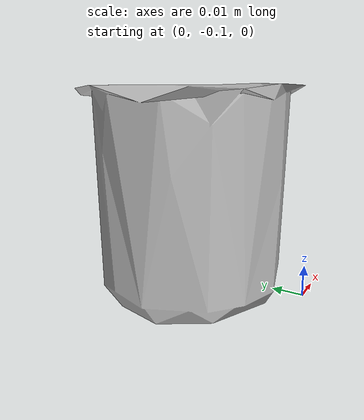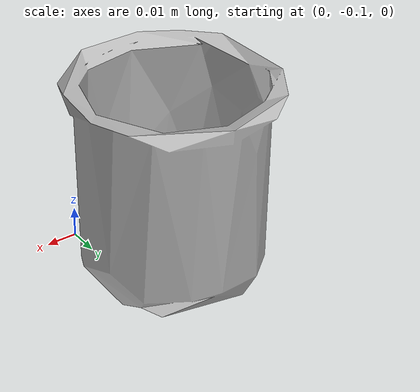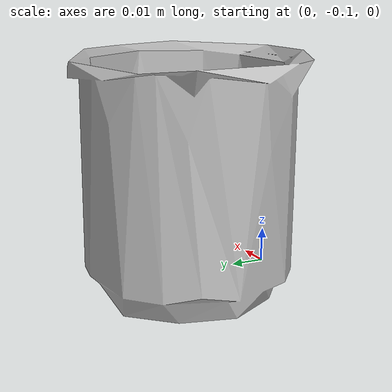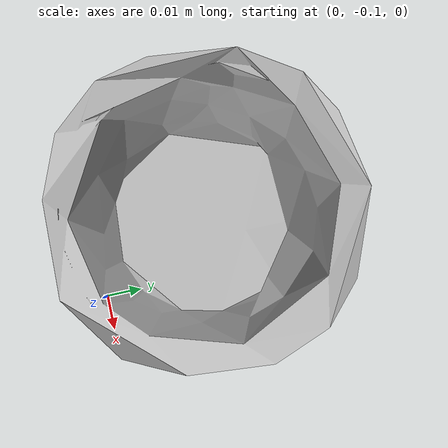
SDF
<?xml version='1.0'?>
<sdf version="1.4">
  <model name="065-c_cups">
    <static>false</static>
    <link name="link">
      <inertial>
        <pose>-0.015477518463612814 -0.06745768403481173 0.03516394697133767 3.136713274130295 0.004069386159697343 -2.7563119596026153</pose>
        <mass>0.018419862896210403</mass>
        <inertia>
          <ixx>1.0671571524432831e-05</ixx>
          <ixy>-5.5524279746987695e-22</ixy>
          <ixz>9.661555138283227e-22</ixz>
          <iyy>1.0654972056886332e-05</iyy>
          <iyz>-2.3303108435099368e-21</iyz>
          <izz>8.27201566035143e-06</izz>
        </inertia>
      </inertial>
      <collision name="collision">
        <geometry>
          <mesh>
            <!-- Use a downsampled mesh for collisions -->
            <uri>model:///065-c_cups/065-c_cups_250_collision.stl</uri>
	        </mesh>
        </geometry>
        <surface>
      </surface>
      </collision>
      <visual name="visual">
        <geometry>
          <mesh>
            <uri>model:///065-c_cups/textured.obj</uri>
	        </mesh>
        </geometry>
        <material>
          <script>
            <uri>model:///065-c_cups/065-c_cups.material</uri>
            <name>065-c_cups</name>
          </script>
        </material>
      </visual>
    </link>
  </model>
</sdf>
